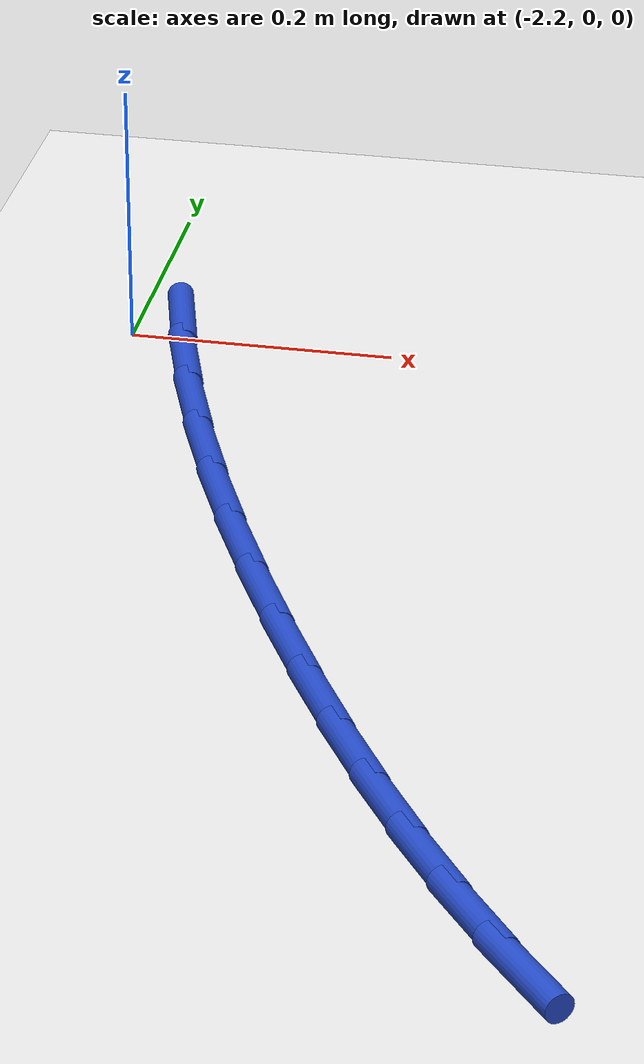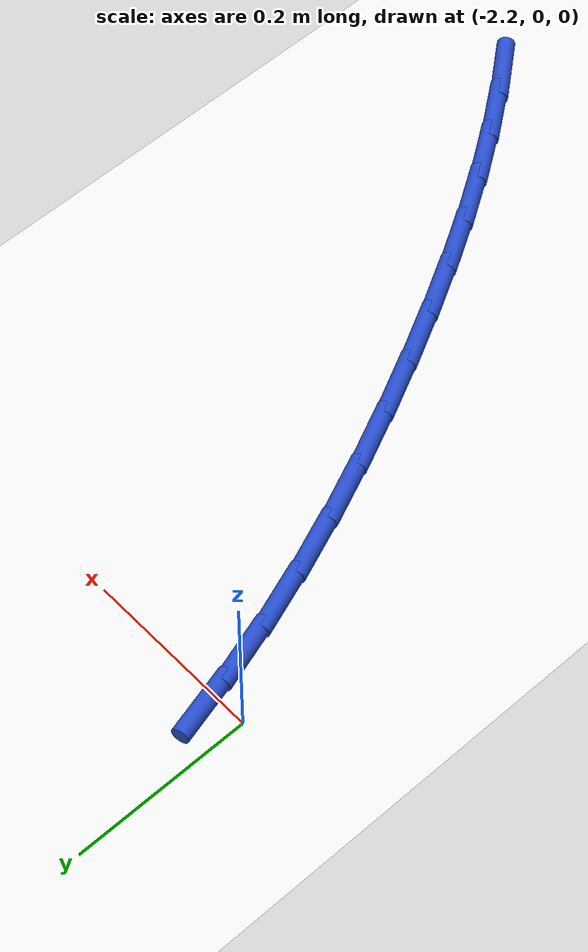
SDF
<sdf version="1.6">
 <world name="default">
  <model name="ground_plane">
   <static>1</static>
   <link name="link">
    <collision name="collision">
     <geometry><plane><normal>0 0 1</normal><size>100 100</size></plane></geometry>
     <surface><friction><ode><mu>100</mu><mu2>50</mu2></ode></friction></surface>
    </collision>
    <visual name="visual">
     <cast_shadows>0</cast_shadows>
     <geometry><plane><normal>0 0 1</normal><size>100 100</size></plane></geometry>
     <material>
      <script><uri>file://media/materials/scripts/gazebo.material</uri><name>Gazebo/WhiteGlow</name></script>
     </material>
    </visual>
   </link>
  </model>
  <model name="line">
   <link name="link_56">
    <pose>-2.1643065927351524 0.016733660417462902 0.01 0 1.57 -1.3152815644344502</pose>
    <collision name="collision">
     <geometry><cylinder><radius>0.01</radius><length>0.08</length></cylinder></geometry>
    </collision>
    <visual name="visual">
     <material>
      <script><name>Gazebo/Blue</name><uri>file://media/materials/scripts/gazebo.material</uri></script>
     </material>
     <geometry><cylinder><radius>0.01</radius><length>0.08</length></cylinder></geometry>
    </visual>
   </link>
   <link name="link_57">
    <pose>-2.147326256830721 -0.04826916387228691 0.01 0 1.57 -1.2685780536988205</pose>
    <collision name="collision">
     <geometry><cylinder><radius>0.01</radius><length>0.08</length></cylinder></geometry>
    </collision>
    <visual name="visual">
     <material>
      <script><name>Gazebo/Blue</name><uri>file://media/materials/scripts/gazebo.material</uri></script>
     </material>
     <geometry><cylinder><radius>0.01</radius><length>0.08</length></cylinder></geometry>
    </visual>
   </link>
   <link name="link_58">
    <pose>-2.127003662842201 -0.11345405781955485 0.01 0 1.57 -1.2277934714282401</pose>
    <collision name="collision">
     <geometry><cylinder><radius>0.01</radius><length>0.08</length></cylinder></geometry>
    </collision>
    <visual name="visual">
     <material>
      <script><name>Gazebo/Blue</name><uri>file://media/materials/scripts/gazebo.material</uri></script>
     </material>
     <geometry><cylinder><radius>0.01</radius><length>0.08</length></cylinder></geometry>
    </visual>
   </link>
   <link name="link_59">
    <pose>-2.1038049622131005 -0.1784147438857076 0.01 0 1.57 -1.1919450154895084</pose>
    <collision name="collision">
     <geometry><cylinder><radius>0.01</radius><length>0.08</length></cylinder></geometry>
    </collision>
    <visual name="visual">
     <material>
      <script><name>Gazebo/Blue</name><uri>file://media/materials/scripts/gazebo.material</uri></script>
     </material>
     <geometry><cylinder><radius>0.01</radius><length>0.08</length></cylinder></geometry>
    </visual>
   </link>
   <link name="link_60">
    <pose>-2.0781963063869306 -0.24274494453210865 0.01 0 1.57 -1.1602229600594771</pose>
    <collision name="collision">
     <geometry><cylinder><radius>0.01</radius><length>0.08</length></cylinder></geometry>
    </collision>
    <visual name="visual">
     <material>
      <script><name>Gazebo/Blue</name><uri>file://media/materials/scripts/gazebo.material</uri></script>
     </material>
     <geometry><cylinder><radius>0.01</radius><length>0.08</length></cylinder></geometry>
    </visual>
   </link>
   <link name="link_61">
    <pose>-2.050643846807202 -0.3060383822201248 0.01 0 1.57 -1.1319596467078243</pose>
    <collision name="collision">
     <geometry><cylinder><radius>0.01</radius><length>0.08</length></cylinder></geometry>
    </collision>
    <visual name="visual">
     <material>
      <script><name>Gazebo/Blue</name><uri>file://media/materials/scripts/gazebo.material</uri></script>
     </material>
     <geometry><cylinder><radius>0.01</radius><length>0.08</length></cylinder></geometry>
    </visual>
   </link>
   <link name="link_62">
    <pose>-2.0216137349174272 -0.36788877941111964 0.01 0 1.57 -1.1066012352262042</pose>
    <collision name="collision">
     <geometry><cylinder><radius>0.01</radius><length>0.08</length></cylinder></geometry>
    </collision>
    <visual name="visual">
     <material>
      <script><name>Gazebo/Blue</name><uri>file://media/materials/scripts/gazebo.material</uri></script>
     </material>
     <geometry><cylinder><radius>0.01</radius><length>0.08</length></cylinder></geometry>
    </visual>
   </link>
   <link name="link_63">
    <pose>-1.991572122161114 -0.42788985856645956 0.01 0 1.57 -1.083498113415564</pose>
    <collision name="collision">
     <geometry><cylinder><radius>0.01</radius><length>0.08</length></cylinder></geometry>
    </collision>
    <visual name="visual">
     <material>
      <script><name>Gazebo/Blue</name><uri>file://media/materials/scripts/gazebo.material</uri></script>
     </material>
     <geometry><cylinder><radius>0.01</radius><length>0.08</length></cylinder></geometry>
    </visual>
   </link>
   <link name="link_64">
    <pose>-1.960962075143956 -0.48565309120609873 0.01 0 1.57 -1.059131555845332</pose>
    <collision name="collision">
     <geometry><cylinder><radius>0.01</radius><length>0.08</length></cylinder></geometry>
    </collision>
    <visual name="visual">
     <material>
      <script><name>Gazebo/Blue</name><uri>file://media/materials/scripts/gazebo.material</uri></script>
     </material>
     <geometry><cylinder><radius>0.01</radius><length>0.08</length></cylinder></geometry>
    </visual>
   </link>
   <link name="link_65">
    <pose>-1.9298280856888215 -0.5410963979239908 0.01 0 1.57 -1.0307917519838186</pose>
    <collision name="collision">
     <geometry><cylinder><radius>0.01</radius><length>0.08</length></cylinder></geometry>
    </collision>
    <visual name="visual">
     <material>
      <script><name>Gazebo/Blue</name><uri>file://media/materials/scripts/gazebo.material</uri></script>
     </material>
     <geometry><cylinder><radius>0.01</radius><length>0.08</length></cylinder></geometry>
    </visual>
   </link>
   <link name="link_66">
    <pose>-1.897878137473722 -0.5943964276978865 0.01 0 1.57 -0.9985880496495133</pose>
    <collision name="collision">
     <geometry><cylinder><radius>0.01</radius><length>0.08</length></cylinder></geometry>
    </collision>
    <visual name="visual">
     <material>
      <script><name>Gazebo/Blue</name><uri>file://media/materials/scripts/gazebo.material</uri></script>
     </material>
     <geometry><cylinder><radius>0.01</radius><length>0.08</length></cylinder></geometry>
    </visual>
   </link>
   <link name="link_67">
    <pose>-1.864809654271449 -0.645737948617225 0.01 0 1.57 -0.9628901933791968</pose>
    <collision name="collision">
     <geometry><cylinder><radius>0.01</radius><length>0.08</length></cylinder></geometry>
    </collision>
    <visual name="visual">
     <material>
      <script><name>Gazebo/Blue</name><uri>file://media/materials/scripts/gazebo.material</uri></script>
     </material>
     <geometry><cylinder><radius>0.01</radius><length>0.08</length></cylinder></geometry>
    </visual>
   </link>
   <link name="link_68">
    <pose>-1.8303200598547877 -0.6953057287714473 0.01 0 1.57 -0.9242451874762423</pose>
    <collision name="collision">
     <geometry><cylinder><radius>0.01</radius><length>0.08</length></cylinder></geometry>
    </collision>
    <visual name="visual">
     <material>
      <script><name>Gazebo/Blue</name><uri>file://media/materials/scripts/gazebo.material</uri></script>
     </material>
     <geometry><cylinder><radius>0.01</radius><length>0.08</length></cylinder></geometry>
    </visual>
   </link>
   <link name="link_69">
    <pose>-1.7941067779965278 -0.7432845362499924 0.01 0 1.57 -0.8833579852652368</pose>
    <collision name="collision">
     <geometry><cylinder><radius>0.01</radius><length>0.08</length></cylinder></geometry>
    </collision>
    <visual name="visual">
     <material>
      <script><name>Gazebo/Blue</name><uri>file://media/materials/scripts/gazebo.material</uri></script>
     </material>
     <geometry><cylinder><radius>0.01</radius><length>0.08</length></cylinder></geometry>
    </visual>
   </link>
  </model>
 </world>
</sdf>
